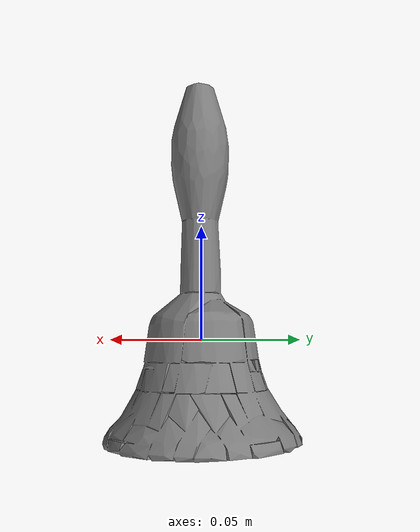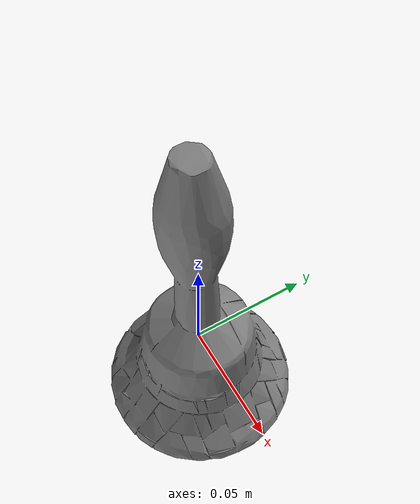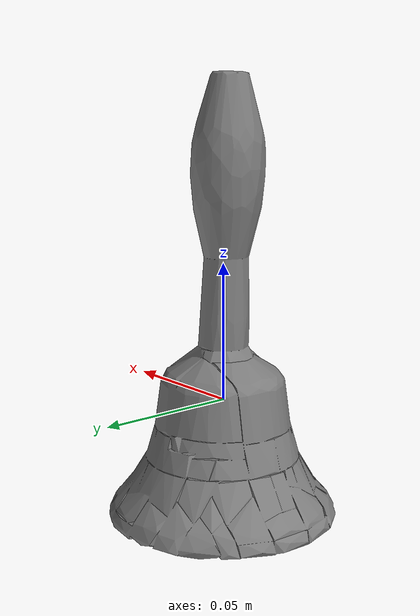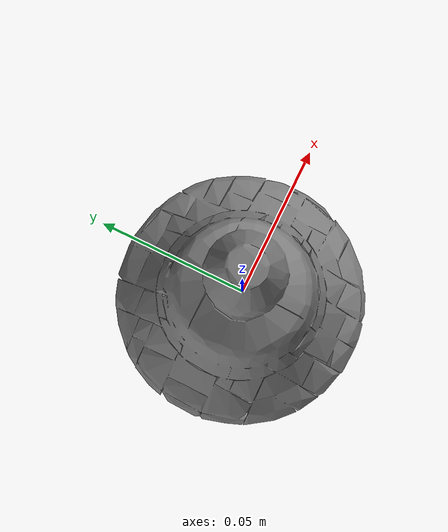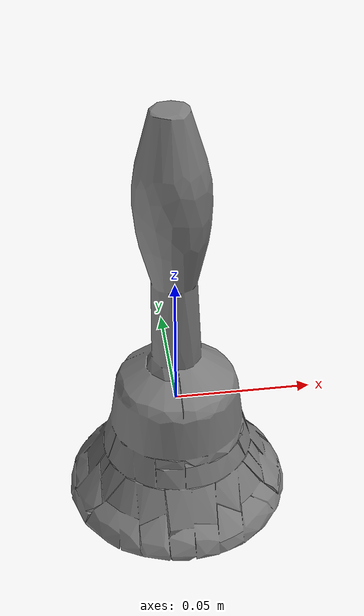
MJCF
<mujoco model="hand_bell_Cole_Hardware_School_Bell_Solid_Brass_38_M">
  <default>
    <default class="visual">
      <geom group="2" type="mesh" contype="0" conaffinity="0" />
    </default>
    <default class="collision">
      <geom group="3" type="mesh" />
    </default>
  </default>
  <asset>
    <mesh file="hand_bell_Cole_Hardware_School_Bell_Solid_Brass_38_M.stl" />
    <mesh file="hand_bell_Cole_Hardware_School_Bell_Solid_Brass_38_M_collision_0.stl" />
    <mesh file="hand_bell_Cole_Hardware_School_Bell_Solid_Brass_38_M_collision_1.stl" />
    <mesh file="hand_bell_Cole_Hardware_School_Bell_Solid_Brass_38_M_collision_2.stl" />
    <mesh file="hand_bell_Cole_Hardware_School_Bell_Solid_Brass_38_M_collision_3.stl" />
    <mesh file="hand_bell_Cole_Hardware_School_Bell_Solid_Brass_38_M_collision_4.stl" />
    <mesh file="hand_bell_Cole_Hardware_School_Bell_Solid_Brass_38_M_collision_5.stl" />
    <mesh file="hand_bell_Cole_Hardware_School_Bell_Solid_Brass_38_M_collision_6.stl" />
    <mesh file="hand_bell_Cole_Hardware_School_Bell_Solid_Brass_38_M_collision_7.stl" />
    <mesh file="hand_bell_Cole_Hardware_School_Bell_Solid_Brass_38_M_collision_8.stl" />
    <mesh file="hand_bell_Cole_Hardware_School_Bell_Solid_Brass_38_M_collision_9.stl" />
    <mesh file="hand_bell_Cole_Hardware_School_Bell_Solid_Brass_38_M_collision_10.stl" />
    <mesh file="hand_bell_Cole_Hardware_School_Bell_Solid_Brass_38_M_collision_11.stl" />
    <mesh file="hand_bell_Cole_Hardware_School_Bell_Solid_Brass_38_M_collision_12.stl" />
    <mesh file="hand_bell_Cole_Hardware_School_Bell_Solid_Brass_38_M_collision_13.stl" />
    <mesh file="hand_bell_Cole_Hardware_School_Bell_Solid_Brass_38_M_collision_14.stl" />
    <mesh file="hand_bell_Cole_Hardware_School_Bell_Solid_Brass_38_M_collision_15.stl" />
  </asset>
  <worldbody>
    <body name="hand_bell_Cole_Hardware_School_Bell_Solid_Brass_38_M">
      <geom mesh="hand_bell_Cole_Hardware_School_Bell_Solid_Brass_38_M" class="visual" />
      <geom mesh="hand_bell_Cole_Hardware_School_Bell_Solid_Brass_38_M_collision_0" class="collision" />
      <geom mesh="hand_bell_Cole_Hardware_School_Bell_Solid_Brass_38_M_collision_1" class="collision" />
      <geom mesh="hand_bell_Cole_Hardware_School_Bell_Solid_Brass_38_M_collision_2" class="collision" />
      <geom mesh="hand_bell_Cole_Hardware_School_Bell_Solid_Brass_38_M_collision_3" class="collision" />
      <geom mesh="hand_bell_Cole_Hardware_School_Bell_Solid_Brass_38_M_collision_4" class="collision" />
      <geom mesh="hand_bell_Cole_Hardware_School_Bell_Solid_Brass_38_M_collision_5" class="collision" />
      <geom mesh="hand_bell_Cole_Hardware_School_Bell_Solid_Brass_38_M_collision_6" class="collision" />
      <geom mesh="hand_bell_Cole_Hardware_School_Bell_Solid_Brass_38_M_collision_7" class="collision" />
      <geom mesh="hand_bell_Cole_Hardware_School_Bell_Solid_Brass_38_M_collision_8" class="collision" />
      <geom mesh="hand_bell_Cole_Hardware_School_Bell_Solid_Brass_38_M_collision_9" class="collision" />
      <geom mesh="hand_bell_Cole_Hardware_School_Bell_Solid_Brass_38_M_collision_10" class="collision" />
      <geom mesh="hand_bell_Cole_Hardware_School_Bell_Solid_Brass_38_M_collision_11" class="collision" />
      <geom mesh="hand_bell_Cole_Hardware_School_Bell_Solid_Brass_38_M_collision_12" class="collision" />
      <geom mesh="hand_bell_Cole_Hardware_School_Bell_Solid_Brass_38_M_collision_13" class="collision" />
      <geom mesh="hand_bell_Cole_Hardware_School_Bell_Solid_Brass_38_M_collision_14" class="collision" />
      <geom mesh="hand_bell_Cole_Hardware_School_Bell_Solid_Brass_38_M_collision_15" class="collision" />
    </body>
  </worldbody>
</mujoco>
